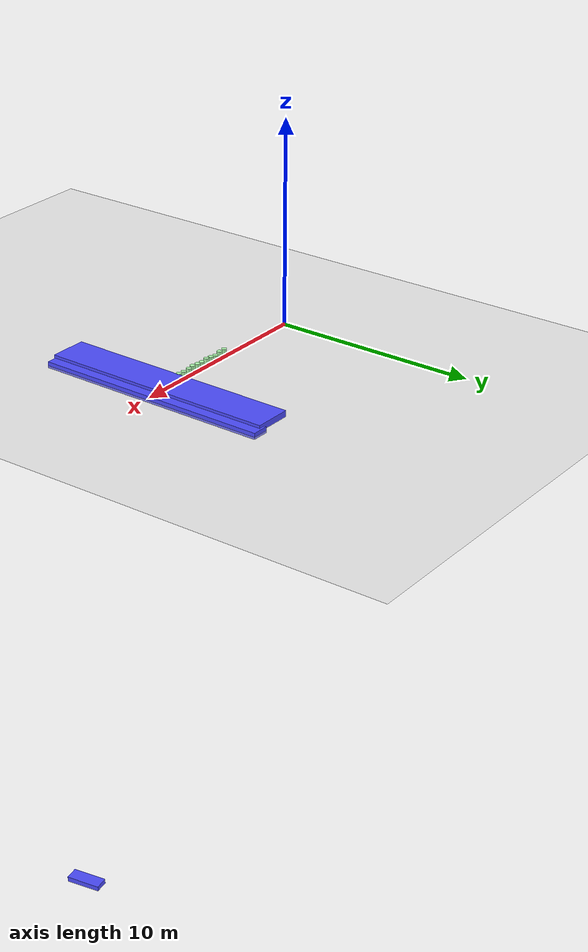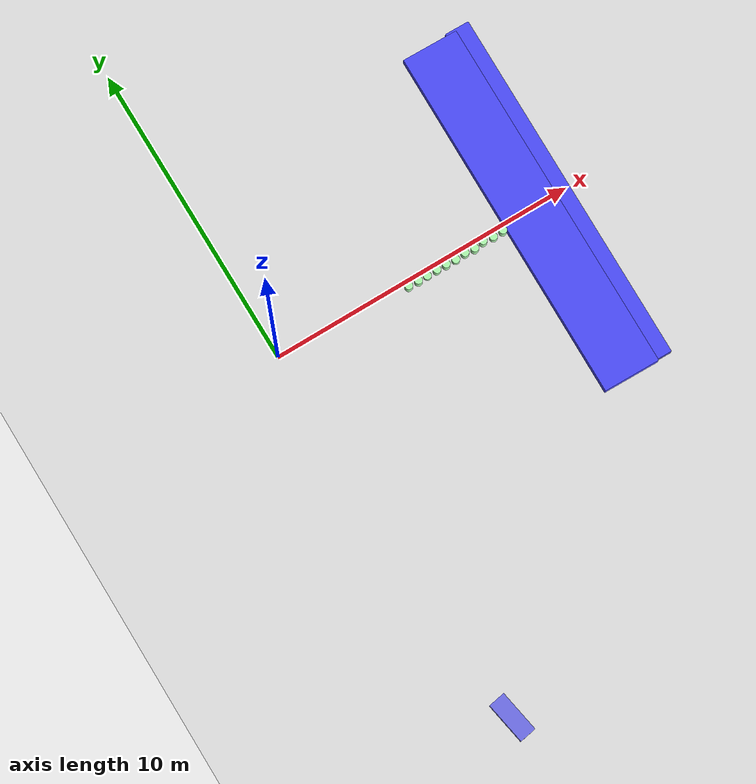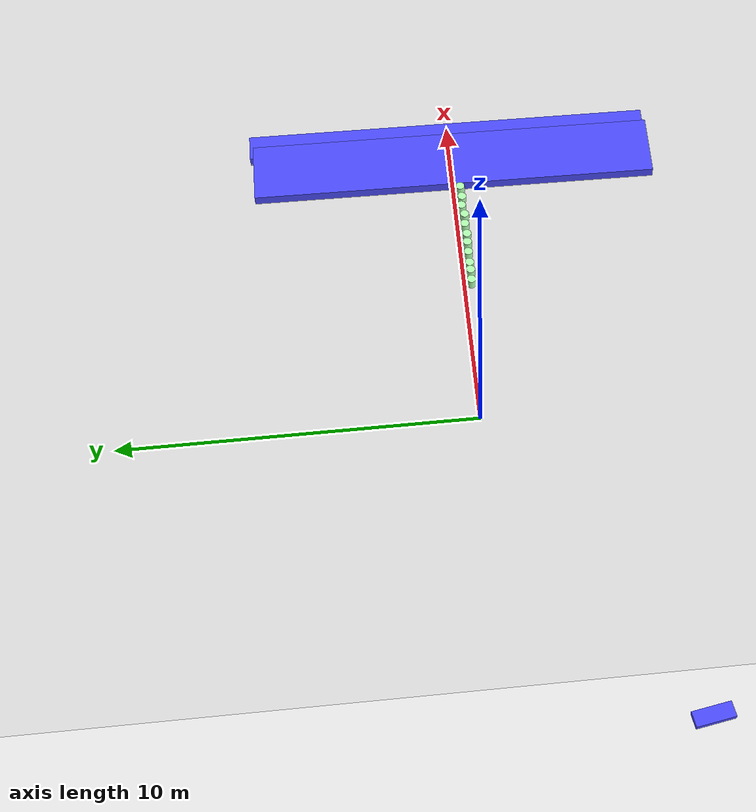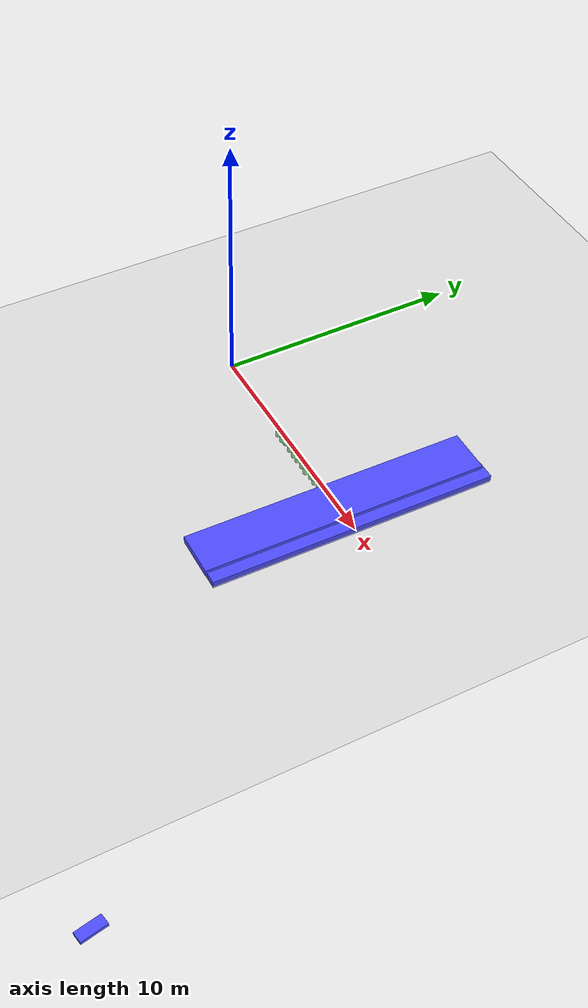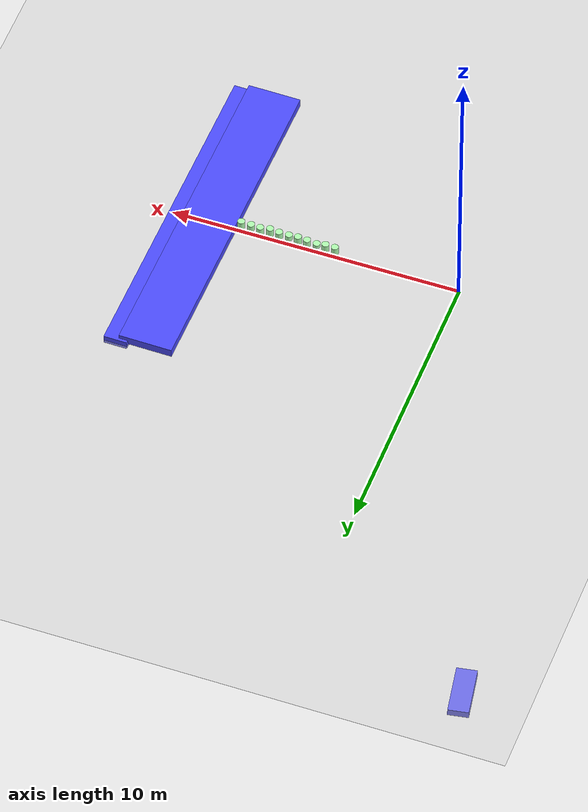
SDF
<sdf version="1.7">
 <world name="default">
  <model name="ground_plane">
   <static>1</static>
   <link name="link">
    <collision name="collision">
     <geometry><plane><normal>0 0 1</normal><size>100 100</size></plane></geometry>
     <surface><friction><ode><mu>100</mu><mu2>50</mu2></ode></friction></surface>
    </collision>
    <visual name="visual">
     <cast_shadows>0</cast_shadows>
     <geometry><plane><normal>0 0 1</normal><size>100 100</size></plane></geometry>
     <material>
      <script><uri>file://media/materials/scripts/gazebo.material</uri><name>Gazebo/Grey</name></script>
     </material>
    </visual>
   </link>
  </model>
  <model name="ban_200_80_30_clone_clone">
   <link name="link">
    <inertial>
     <mass>1</mass>
     <inertia>
      <ixx>0.166667</ixx>
      <ixy>0</ixy>
      <ixz>0</ixz>
      <iyy>0.166667</iyy>
      <iyz>0</iyz>
      <izz>0.166667</izz>
     </inertia>
    </inertial>
    <visual name="visual">
     <geometry><box><size>2 0.8 0.3</size></box></geometry>
     <material>
      <script><name>Gazebo/Grey</name><uri>file://media/materials/scripts/gazebo.material</uri></script>
      <shader type="pixel"><normal_map>__default__</normal_map></shader>
      <ambient>0.3 0.3 1 1</ambient>
      <diffuse>0.7 0.7 0.7 1</diffuse>
      <specular>0.01 0.01 0.01 1</specular>
      <emissive>0 0 0 1</emissive>
     </material>
    </visual>
    <collision name="collision">
     <geometry><box><size>2 0.8 0.3</size></box></geometry>
     <surface>
      <friction>
       <ode><mu>1</mu><mu2>1</mu2><fdir1>0 0 0</fdir1><slip1>0</slip1><slip2>0</slip2></ode>
       <torsional>
        <coefficient>1</coefficient>
        <patch_radius>0</patch_radius>
        <surface_radius>0</surface_radius>
        <use_patch_radius>1</use_patch_radius>
        <ode><slip>0</slip></ode>
       </torsional>
      </friction>
      <bounce><restitution_coefficient>0</restitution_coefficient><threshold>1e+06</threshold></bounce>
      <contact>
       <collide_without_contact>0</collide_without_contact>
       <collide_without_contact_bitmask>1</collide_without_contact_bitmask>
       <collide_bitmask>1</collide_bitmask>
       <ode>
        <soft_cfm>0</soft_cfm>
        <soft_erp>0.2</soft_erp>
        <kp>1e+13</kp>
        <kd>1</kd>
        <max_vel>0.01</max_vel>
        <min_depth>0</min_depth>
       </ode>
       <bullet>
        <split_impulse>1</split_impulse>
        <split_impulse_penetration_threshold>-0.01</split_impulse_penetration_threshold>
        <soft_cfm>0</soft_cfm>
        <soft_erp>0.2</soft_erp>
        <kp>1e+13</kp>
        <kd>1</kd>
       </bullet>
      </contact>
     </surface>
    </collision>
   </link>
   <static>1</static>
   <pose>3.32802 -11.2985 -36.3188 0 0 -1.39548</pose>
  </model>
  <model name="ban_400_80_30_clone">
   <link name="link">
    <inertial>
     <mass>1</mass>
     <inertia>
      <ixx>0.166667</ixx>
      <ixy>0</ixy>
      <ixz>0</ixz>
      <iyy>0.166667</iyy>
      <iyz>0</iyz>
      <izz>0.166667</izz>
     </inertia>
    </inertial>
    <visual name="visual">
     <geometry><box><size>11.7457 0.8 0.3</size></box></geometry>
     <material>
      <script><name>Gazebo/Grey</name><uri>file://media/materials/scripts/gazebo.material</uri></script>
      <shader type="pixel"><normal_map>__default__</normal_map></shader>
      <ambient>0.3 0.3 1 1</ambient>
      <diffuse>0.7 0.7 0.7 1</diffuse>
      <specular>0.01 0.01 0.01 1</specular>
      <emissive>0 0 0 1</emissive>
     </material>
    </visual>
    <collision name="collision">
     <geometry><box><size>11.7457 0.8 0.3</size></box></geometry>
     <surface>
      <friction>
       <ode><mu>1</mu><mu2>1</mu2><fdir1>0 0 0</fdir1><slip1>0</slip1><slip2>0</slip2></ode>
       <torsional>
        <coefficient>1</coefficient>
        <patch_radius>0</patch_radius>
        <surface_radius>0</surface_radius>
        <use_patch_radius>1</use_patch_radius>
        <ode><slip>0</slip></ode>
       </torsional>
      </friction>
      <bounce><restitution_coefficient>0</restitution_coefficient><threshold>1e+06</threshold></bounce>
      <contact>
       <collide_without_contact>0</collide_without_contact>
       <collide_without_contact_bitmask>1</collide_without_contact_bitmask>
       <collide_bitmask>1</collide_bitmask>
       <ode>
        <soft_cfm>0</soft_cfm>
        <soft_erp>0.2</soft_erp>
        <kp>1e+13</kp>
        <kd>1</kd>
        <max_vel>0.01</max_vel>
        <min_depth>0</min_depth>
       </ode>
       <bullet>
        <split_impulse>1</split_impulse>
        <split_impulse_penetration_threshold>-0.01</split_impulse_penetration_threshold>
        <soft_cfm>0</soft_cfm>
        <soft_erp>0.2</soft_erp>
        <kp>1e+13</kp>
        <kd>1</kd>
       </bullet>
      </contact>
     </surface>
    </collision>
   </link>
   <static>1</static>
   <pose>9.68721 0.016567 0 0 -0 1.55763</pose>
  </model>
  <model name="ban_400_80_30_clone_clone_clone">
   <link name="link">
    <inertial>
     <mass>1</mass>
     <inertia>
      <ixx>0.166667</ixx>
      <ixy>0</ixy>
      <ixz>0</ixz>
      <iyy>0.166667</iyy>
      <iyz>0</iyz>
      <izz>0.166667</izz>
     </inertia>
    </inertial>
    <visual name="visual">
     <geometry><box><size>11.703 1.83242 0.3</size></box></geometry>
     <material>
      <script><name>Gazebo/Grey</name><uri>file://media/materials/scripts/gazebo.material</uri></script>
      <shader type="pixel"><normal_map>__default__</normal_map></shader>
      <ambient>0.3 0.3 1 1</ambient>
      <diffuse>0.7 0.7 0.7 1</diffuse>
      <specular>0.01 0.01 0.01 1</specular>
      <emissive>0 0 0 1</emissive>
     </material>
    </visual>
    <collision name="collision">
     <geometry><box><size>11.703 1.83242 0.3</size></box></geometry>
     <surface>
      <friction>
       <ode><mu>1</mu><mu2>1</mu2><fdir1>0 0 0</fdir1><slip1>0</slip1><slip2>0</slip2></ode>
       <torsional>
        <coefficient>1</coefficient>
        <patch_radius>0</patch_radius>
        <surface_radius>0</surface_radius>
        <use_patch_radius>1</use_patch_radius>
        <ode><slip>0</slip></ode>
       </torsional>
      </friction>
      <bounce><restitution_coefficient>0</restitution_coefficient><threshold>1e+06</threshold></bounce>
      <contact>
       <collide_without_contact>0</collide_without_contact>
       <collide_without_contact_bitmask>1</collide_without_contact_bitmask>
       <collide_bitmask>1</collide_bitmask>
       <ode>
        <soft_cfm>0</soft_cfm>
        <soft_erp>0.2</soft_erp>
        <kp>1e+13</kp>
        <kd>1</kd>
        <max_vel>0.01</max_vel>
        <min_depth>0</min_depth>
       </ode>
       <bullet>
        <split_impulse>1</split_impulse>
        <split_impulse_penetration_threshold>-0.01</split_impulse_penetration_threshold>
        <soft_cfm>0</soft_cfm>
        <soft_erp>0.2</soft_erp>
        <kp>1e+13</kp>
        <kd>1</kd>
       </bullet>
      </contact>
     </surface>
    </collision>
   </link>
   <static>1</static>
   <pose>8.67792 -0.051809 0.139007 0 -0 1.55763</pose>
  </model>
  <model name="mhz_y_25_30_clone_13_clone_clone_9_clone_0">
   <link name="link">
    <inertial>
     <mass>1</mass>
     <inertia><ixx>0.145833</ixx><ixy>0</ixy><ixz>0</ixz><iyy>0.145833</iyy><iyz>0</iyz><izz>0.125</izz></inertia>
    </inertial>
    <visual name="visual">
     <geometry><cylinder><radius>0.125</radius><length>0.3</length></cylinder></geometry>
     <material>
      <script><name>Gazebo/Grey</name><uri>file://media/materials/scripts/gazebo.material</uri></script>
      <shader type="pixel"><normal_map>__default__</normal_map></shader>
      <ambient>0 1 0 0</ambient>
      <diffuse>0.7 1 0.7 1</diffuse>
      <specular>0.01 0.01 0.01 1</specular>
      <emissive>0 0 0 1</emissive>
     </material>
    </visual>
    <collision name="collision">
     <geometry><cylinder><radius>0.125</radius><length>0.3</length></cylinder></geometry>
     <surface>
      <friction>
       <ode><mu>1</mu><mu2>1</mu2><fdir1>0 0 0</fdir1><slip1>0</slip1><slip2>0</slip2></ode>
       <torsional>
        <coefficient>1</coefficient>
        <patch_radius>0</patch_radius>
        <surface_radius>0</surface_radius>
        <use_patch_radius>1</use_patch_radius>
        <ode><slip>0</slip></ode>
       </torsional>
      </friction>
      <bounce><restitution_coefficient>0</restitution_coefficient><threshold>1e+06</threshold></bounce>
      <contact>
       <collide_without_contact>0</collide_without_contact>
       <collide_without_contact_bitmask>1</collide_without_contact_bitmask>
       <collide_bitmask>1</collide_bitmask>
       <ode>
        <soft_cfm>0</soft_cfm>
        <soft_erp>0.2</soft_erp>
        <kp>1e+13</kp>
        <kd>1</kd>
        <max_vel>0.01</max_vel>
        <min_depth>0</min_depth>
       </ode>
       <bullet>
        <split_impulse>1</split_impulse>
        <split_impulse_penetration_threshold>-0.01</split_impulse_penetration_threshold>
        <soft_cfm>0</soft_cfm>
        <soft_erp>0.2</soft_erp>
        <kp>1e+13</kp>
        <kd>1</kd>
       </bullet>
      </contact>
     </surface>
    </collision>
   </link>
   <static>1</static>
   <pose>4.38543 -0.19628 0.14679 0 -0 0</pose>
  </model>
  <model name="mhz_y_25_30_clone_13_clone_clone_9_clone_1">
   <link name="link">
    <inertial>
     <mass>1</mass>
     <inertia><ixx>0.145833</ixx><ixy>0</ixy><ixz>0</ixz><iyy>0.145833</iyy><iyz>0</iyz><izz>0.125</izz></inertia>
    </inertial>
    <visual name="visual">
     <geometry><cylinder><radius>0.125</radius><length>0.3</length></cylinder></geometry>
     <material>
      <script><name>Gazebo/Grey</name><uri>file://media/materials/scripts/gazebo.material</uri></script>
      <shader type="pixel"><normal_map>__default__</normal_map></shader>
      <ambient>0 1 0 0</ambient>
      <diffuse>0.7 1 0.7 1</diffuse>
      <specular>0.01 0.01 0.01 1</specular>
      <emissive>0 0 0 1</emissive>
     </material>
    </visual>
    <collision name="collision">
     <geometry><cylinder><radius>0.125</radius><length>0.3</length></cylinder></geometry>
     <surface>
      <friction>
       <ode><mu>1</mu><mu2>1</mu2><fdir1>0 0 0</fdir1><slip1>0</slip1><slip2>0</slip2></ode>
       <torsional>
        <coefficient>1</coefficient>
        <patch_radius>0</patch_radius>
        <surface_radius>0</surface_radius>
        <use_patch_radius>1</use_patch_radius>
        <ode><slip>0</slip></ode>
       </torsional>
      </friction>
      <bounce><restitution_coefficient>0</restitution_coefficient><threshold>1e+06</threshold></bounce>
      <contact>
       <collide_without_contact>0</collide_without_contact>
       <collide_without_contact_bitmask>1</collide_without_contact_bitmask>
       <collide_bitmask>1</collide_bitmask>
       <ode>
        <soft_cfm>0</soft_cfm>
        <soft_erp>0.2</soft_erp>
        <kp>1e+13</kp>
        <kd>1</kd>
        <max_vel>0.01</max_vel>
        <min_depth>0</min_depth>
       </ode>
       <bullet>
        <split_impulse>1</split_impulse>
        <split_impulse_penetration_threshold>-0.01</split_impulse_penetration_threshold>
        <soft_cfm>0</soft_cfm>
        <soft_erp>0.2</soft_erp>
        <kp>1e+13</kp>
        <kd>1</kd>
       </bullet>
      </contact>
     </surface>
    </collision>
   </link>
   <static>1</static>
   <pose>4.71749 -0.205645 0.14679 0 -0 0</pose>
  </model>
  <model name="mhz_y_25_30_clone_13_clone_clone_9_clone_3">
   <link name="link">
    <inertial>
     <mass>1</mass>
     <inertia><ixx>0.145833</ixx><ixy>0</ixy><ixz>0</ixz><iyy>0.145833</iyy><iyz>0</iyz><izz>0.125</izz></inertia>
    </inertial>
    <visual name="visual">
     <geometry><cylinder><radius>0.125</radius><length>0.132572</length></cylinder></geometry>
     <material>
      <script><name>Gazebo/Grey</name><uri>file://media/materials/scripts/gazebo.material</uri></script>
      <shader type="pixel"><normal_map>__default__</normal_map></shader>
      <ambient>0 1 0 0</ambient>
      <diffuse>0.7 1 0.7 1</diffuse>
      <specular>0.01 0.01 0.01 1</specular>
      <emissive>0 0 0 1</emissive>
     </material>
    </visual>
    <collision name="collision">
     <geometry><cylinder><radius>0.125</radius><length>0.132572</length></cylinder></geometry>
     <surface>
      <friction>
       <ode><mu>1</mu><mu2>1</mu2><fdir1>0 0 0</fdir1><slip1>0</slip1><slip2>0</slip2></ode>
       <torsional>
        <coefficient>1</coefficient>
        <patch_radius>0</patch_radius>
        <surface_radius>0</surface_radius>
        <use_patch_radius>1</use_patch_radius>
        <ode><slip>0</slip></ode>
       </torsional>
      </friction>
      <bounce><restitution_coefficient>0</restitution_coefficient><threshold>1e+06</threshold></bounce>
      <contact>
       <collide_without_contact>0</collide_without_contact>
       <collide_without_contact_bitmask>1</collide_without_contact_bitmask>
       <collide_bitmask>1</collide_bitmask>
       <ode>
        <soft_cfm>0</soft_cfm>
        <soft_erp>0.2</soft_erp>
        <kp>1e+13</kp>
        <kd>1</kd>
        <max_vel>0.01</max_vel>
        <min_depth>0</min_depth>
       </ode>
       <bullet>
        <split_impulse>1</split_impulse>
        <split_impulse_penetration_threshold>-0.01</split_impulse_penetration_threshold>
        <soft_cfm>0</soft_cfm>
        <soft_erp>0.2</soft_erp>
        <kp>1e+13</kp>
        <kd>1</kd>
       </bullet>
      </contact>
     </surface>
    </collision>
   </link>
   <static>1</static>
   <pose>5.02456 -0.207351 0.14679 0 -0 0</pose>
  </model>
  <model name="mhz_y_25_30_clone_13_clone_clone_9_clone_5">
   <link name="link">
    <inertial>
     <mass>1</mass>
     <inertia><ixx>0.145833</ixx><ixy>0</ixy><ixz>0</ixz><iyy>0.145833</iyy><iyz>0</iyz><izz>0.125</izz></inertia>
    </inertial>
    <visual name="visual">
     <geometry><cylinder><radius>0.125</radius><length>0.243124</length></cylinder></geometry>
     <material>
      <script><name>Gazebo/Grey</name><uri>file://media/materials/scripts/gazebo.material</uri></script>
      <shader type="pixel"><normal_map>__default__</normal_map></shader>
      <ambient>0 1 0 0</ambient>
      <diffuse>0.7 1 0.7 1</diffuse>
      <specular>0.01 0.01 0.01 1</specular>
      <emissive>0 0 0 1</emissive>
     </material>
    </visual>
    <collision name="collision">
     <geometry><cylinder><radius>0.125</radius><length>0.243124</length></cylinder></geometry>
     <surface>
      <friction>
       <ode><mu>1</mu><mu2>1</mu2><fdir1>0 0 0</fdir1><slip1>0</slip1><slip2>0</slip2></ode>
       <torsional>
        <coefficient>1</coefficient>
        <patch_radius>0</patch_radius>
        <surface_radius>0</surface_radius>
        <use_patch_radius>1</use_patch_radius>
        <ode><slip>0</slip></ode>
       </torsional>
      </friction>
      <bounce><restitution_coefficient>0</restitution_coefficient><threshold>1e+06</threshold></bounce>
      <contact>
       <collide_without_contact>0</collide_without_contact>
       <collide_without_contact_bitmask>1</collide_without_contact_bitmask>
       <collide_bitmask>1</collide_bitmask>
       <ode>
        <soft_cfm>0</soft_cfm>
        <soft_erp>0.2</soft_erp>
        <kp>1e+13</kp>
        <kd>1</kd>
        <max_vel>0.01</max_vel>
        <min_depth>0</min_depth>
       </ode>
       <bullet>
        <split_impulse>1</split_impulse>
        <split_impulse_penetration_threshold>-0.01</split_impulse_penetration_threshold>
        <soft_cfm>0</soft_cfm>
        <soft_erp>0.2</soft_erp>
        <kp>1e+13</kp>
        <kd>1</kd>
       </bullet>
      </contact>
     </surface>
    </collision>
   </link>
   <static>1</static>
   <pose>5.35747 -0.201458 0.14679 0 -0 0</pose>
  </model>
  <model name="mhz_y_25_30_clone_13_clone_clone_9_clone_7">
   <link name="link">
    <inertial>
     <mass>1</mass>
     <inertia><ixx>0.145833</ixx><ixy>0</ixy><ixz>0</ixz><iyy>0.145833</iyy><iyz>0</iyz><izz>0.125</izz></inertia>
    </inertial>
    <visual name="visual">
     <geometry><cylinder><radius>0.125</radius><length>0.3</length></cylinder></geometry>
     <material>
      <script><name>Gazebo/Grey</name><uri>file://media/materials/scripts/gazebo.material</uri></script>
      <shader type="pixel"><normal_map>__default__</normal_map></shader>
      <ambient>0 1 0 0</ambient>
      <diffuse>0.7 1 0.7 1</diffuse>
      <specular>0.01 0.01 0.01 1</specular>
      <emissive>0 0 0 1</emissive>
     </material>
    </visual>
    <collision name="collision">
     <geometry><cylinder><radius>0.125</radius><length>0.3</length></cylinder></geometry>
     <surface>
      <friction>
       <ode><mu>1</mu><mu2>1</mu2><fdir1>0 0 0</fdir1><slip1>0</slip1><slip2>0</slip2></ode>
       <torsional>
        <coefficient>1</coefficient>
        <patch_radius>0</patch_radius>
        <surface_radius>0</surface_radius>
        <use_patch_radius>1</use_patch_radius>
        <ode><slip>0</slip></ode>
       </torsional>
      </friction>
      <bounce><restitution_coefficient>0</restitution_coefficient><threshold>1e+06</threshold></bounce>
      <contact>
       <collide_without_contact>0</collide_without_contact>
       <collide_without_contact_bitmask>1</collide_without_contact_bitmask>
       <collide_bitmask>1</collide_bitmask>
       <ode>
        <soft_cfm>0</soft_cfm>
        <soft_erp>0.2</soft_erp>
        <kp>1e+13</kp>
        <kd>1</kd>
        <max_vel>0.01</max_vel>
        <min_depth>0</min_depth>
       </ode>
       <bullet>
        <split_impulse>1</split_impulse>
        <split_impulse_penetration_threshold>-0.01</split_impulse_penetration_threshold>
        <soft_cfm>0</soft_cfm>
        <soft_erp>0.2</soft_erp>
        <kp>1e+13</kp>
        <kd>1</kd>
       </bullet>
      </contact>
     </surface>
    </collision>
   </link>
   <static>1</static>
   <pose>5.67725 -0.205084 0.14679 0 -0 0</pose>
  </model>
  <model name="mhz_y_25_30_clone_13_clone_clone_9_clone_9">
   <link name="link">
    <inertial>
     <mass>1</mass>
     <inertia><ixx>0.145833</ixx><ixy>0</ixy><ixz>0</ixz><iyy>0.145833</iyy><iyz>0</iyz><izz>0.125</izz></inertia>
    </inertial>
    <visual name="visual">
     <geometry><cylinder><radius>0.125</radius><length>0.191489</length></cylinder></geometry>
     <material>
      <script><name>Gazebo/Grey</name><uri>file://media/materials/scripts/gazebo.material</uri></script>
      <shader type="pixel"><normal_map>__default__</normal_map></shader>
      <ambient>0 1 0 0</ambient>
      <diffuse>0.7 1 0.7 1</diffuse>
      <specular>0.01 0.01 0.01 1</specular>
      <emissive>0 0 0 1</emissive>
     </material>
    </visual>
    <collision name="collision">
     <geometry><cylinder><radius>0.125</radius><length>0.191489</length></cylinder></geometry>
     <surface>
      <friction>
       <ode><mu>1</mu><mu2>1</mu2><fdir1>0 0 0</fdir1><slip1>0</slip1><slip2>0</slip2></ode>
       <torsional>
        <coefficient>1</coefficient>
        <patch_radius>0</patch_radius>
        <surface_radius>0</surface_radius>
        <use_patch_radius>1</use_patch_radius>
        <ode><slip>0</slip></ode>
       </torsional>
      </friction>
      <bounce><restitution_coefficient>0</restitution_coefficient><threshold>1e+06</threshold></bounce>
      <contact>
       <collide_without_contact>0</collide_without_contact>
       <collide_without_contact_bitmask>1</collide_without_contact_bitmask>
       <collide_bitmask>1</collide_bitmask>
       <ode>
        <soft_cfm>0</soft_cfm>
        <soft_erp>0.2</soft_erp>
        <kp>1e+13</kp>
        <kd>1</kd>
        <max_vel>0.01</max_vel>
        <min_depth>0</min_depth>
       </ode>
       <bullet>
        <split_impulse>1</split_impulse>
        <split_impulse_penetration_threshold>-0.01</split_impulse_penetration_threshold>
        <soft_cfm>0</soft_cfm>
        <soft_erp>0.2</soft_erp>
        <kp>1e+13</kp>
        <kd>1</kd>
       </bullet>
      </contact>
     </surface>
    </collision>
   </link>
   <static>1</static>
   <pose>6.00131 -0.224235 0.14679 0 -0 0</pose>
  </model>
  <model name="mhz_y_25_30_clone_13_clone_clone_9_clone_9_clone">
   <link name="link">
    <inertial>
     <mass>1</mass>
     <inertia><ixx>0.145833</ixx><ixy>0</ixy><ixz>0</ixz><iyy>0.145833</iyy><iyz>0</iyz><izz>0.125</izz></inertia>
    </inertial>
    <visual name="visual">
     <geometry><cylinder><radius>0.125</radius><length>0.263961</length></cylinder></geometry>
     <material>
      <script><name>Gazebo/Grey</name><uri>file://media/materials/scripts/gazebo.material</uri></script>
      <shader type="pixel"><normal_map>__default__</normal_map></shader>
      <ambient>0 1 0 0</ambient>
      <diffuse>0.7 1 0.7 1</diffuse>
      <specular>0.01 0.01 0.01 1</specular>
      <emissive>0 0 0 1</emissive>
     </material>
    </visual>
    <collision name="collision">
     <geometry><cylinder><radius>0.125</radius><length>0.263961</length></cylinder></geometry>
     <surface>
      <friction>
       <ode><mu>1</mu><mu2>1</mu2><fdir1>0 0 0</fdir1><slip1>0</slip1><slip2>0</slip2></ode>
       <torsional>
        <coefficient>1</coefficient>
        <patch_radius>0</patch_radius>
        <surface_radius>0</surface_radius>
        <use_patch_radius>1</use_patch_radius>
        <ode><slip>0</slip></ode>
       </torsional>
      </friction>
      <bounce><restitution_coefficient>0</restitution_coefficient><threshold>1e+06</threshold></bounce>
      <contact>
       <collide_without_contact>0</collide_without_contact>
       <collide_without_contact_bitmask>1</collide_without_contact_bitmask>
       <collide_bitmask>1</collide_bitmask>
       <ode>
        <soft_cfm>0</soft_cfm>
        <soft_erp>0.2</soft_erp>
        <kp>1e+13</kp>
        <kd>1</kd>
        <max_vel>0.01</max_vel>
        <min_depth>0</min_depth>
       </ode>
       <bullet>
        <split_impulse>1</split_impulse>
        <split_impulse_penetration_threshold>-0.01</split_impulse_penetration_threshold>
        <soft_cfm>0</soft_cfm>
        <soft_erp>0.2</soft_erp>
        <kp>1e+13</kp>
        <kd>1</kd>
       </bullet>
      </contact>
     </surface>
    </collision>
   </link>
   <static>1</static>
   <pose>6.33421 -0.196664 0.14679 0 -0 0</pose>
  </model>
  <model name="mhz_y_25_30_clone_13_clone_clone_9_clone_9_clone_1">
   <link name="link">
    <inertial>
     <mass>1</mass>
     <inertia><ixx>0.145833</ixx><ixy>0</ixy><ixz>0</ixz><iyy>0.145833</iyy><iyz>0</iyz><izz>0.125</izz></inertia>
    </inertial>
    <visual name="visual">
     <geometry><cylinder><radius>0.125</radius><length>0.3</length></cylinder></geometry>
     <material>
      <script><name>Gazebo/Grey</name><uri>file://media/materials/scripts/gazebo.material</uri></script>
      <shader type="pixel"><normal_map>__default__</normal_map></shader>
      <ambient>0 1 0 0</ambient>
      <diffuse>0.7 1 0.7 1</diffuse>
      <specular>0.01 0.01 0.01 1</specular>
      <emissive>0 0 0 1</emissive>
     </material>
    </visual>
    <collision name="collision">
     <geometry><cylinder><radius>0.125</radius><length>0.3</length></cylinder></geometry>
     <surface>
      <friction>
       <ode><mu>1</mu><mu2>1</mu2><fdir1>0 0 0</fdir1><slip1>0</slip1><slip2>0</slip2></ode>
       <torsional>
        <coefficient>1</coefficient>
        <patch_radius>0</patch_radius>
        <surface_radius>0</surface_radius>
        <use_patch_radius>1</use_patch_radius>
        <ode><slip>0</slip></ode>
       </torsional>
      </friction>
      <bounce><restitution_coefficient>0</restitution_coefficient><threshold>1e+06</threshold></bounce>
      <contact>
       <collide_without_contact>0</collide_without_contact>
       <collide_without_contact_bitmask>1</collide_without_contact_bitmask>
       <collide_bitmask>1</collide_bitmask>
       <ode>
        <soft_cfm>0</soft_cfm>
        <soft_erp>0.2</soft_erp>
        <kp>1e+13</kp>
        <kd>1</kd>
        <max_vel>0.01</max_vel>
        <min_depth>0</min_depth>
       </ode>
       <bullet>
        <split_impulse>1</split_impulse>
        <split_impulse_penetration_threshold>-0.01</split_impulse_penetration_threshold>
        <soft_cfm>0</soft_cfm>
        <soft_erp>0.2</soft_erp>
        <kp>1e+13</kp>
        <kd>1</kd>
       </bullet>
      </contact>
     </surface>
    </collision>
   </link>
   <static>1</static>
   <pose>6.65657 -0.225918 0.14679 0 -0 0</pose>
  </model>
  <model name="mhz_y_25_30_clone_13_clone_clone_9_clone_9_clone_3">
   <link name="link">
    <inertial>
     <mass>1</mass>
     <inertia><ixx>0.145833</ixx><ixy>0</ixy><ixz>0</ixz><iyy>0.145833</iyy><iyz>0</iyz><izz>0.125</izz></inertia>
    </inertial>
    <visual name="visual">
     <geometry><cylinder><radius>0.125</radius><length>0.3</length></cylinder></geometry>
     <material>
      <script><name>Gazebo/Grey</name><uri>file://media/materials/scripts/gazebo.material</uri></script>
      <shader type="pixel"><normal_map>__default__</normal_map></shader>
      <ambient>0 1 0 0</ambient>
      <diffuse>0.7 1 0.7 1</diffuse>
      <specular>0.01 0.01 0.01 1</specular>
      <emissive>0 0 0 1</emissive>
     </material>
    </visual>
    <collision name="collision">
     <geometry><cylinder><radius>0.125</radius><length>0.3</length></cylinder></geometry>
     <surface>
      <friction>
       <ode><mu>1</mu><mu2>1</mu2><fdir1>0 0 0</fdir1><slip1>0</slip1><slip2>0</slip2></ode>
       <torsional>
        <coefficient>1</coefficient>
        <patch_radius>0</patch_radius>
        <surface_radius>0</surface_radius>
        <use_patch_radius>1</use_patch_radius>
        <ode><slip>0</slip></ode>
       </torsional>
      </friction>
      <bounce><restitution_coefficient>0</restitution_coefficient><threshold>1e+06</threshold></bounce>
      <contact>
       <collide_without_contact>0</collide_without_contact>
       <collide_without_contact_bitmask>1</collide_without_contact_bitmask>
       <collide_bitmask>1</collide_bitmask>
       <ode>
        <soft_cfm>0</soft_cfm>
        <soft_erp>0.2</soft_erp>
        <kp>1e+13</kp>
        <kd>1</kd>
        <max_vel>0.01</max_vel>
        <min_depth>0</min_depth>
       </ode>
       <bullet>
        <split_impulse>1</split_impulse>
        <split_impulse_penetration_threshold>-0.01</split_impulse_penetration_threshold>
        <soft_cfm>0</soft_cfm>
        <soft_erp>0.2</soft_erp>
        <kp>1e+13</kp>
        <kd>1</kd>
       </bullet>
      </contact>
     </surface>
    </collision>
   </link>
   <static>1</static>
   <pose>6.98232 -0.164823 0.14679 0 -0 0</pose>
  </model>
  <model name="mhz_y_25_30_clone_13_clone_clone_9_clone_9_clone_5">
   <link name="link">
    <inertial>
     <mass>1</mass>
     <inertia><ixx>0.145833</ixx><ixy>0</ixy><ixz>0</ixz><iyy>0.145833</iyy><iyz>0</iyz><izz>0.125</izz></inertia>
    </inertial>
    <visual name="visual">
     <geometry><cylinder><radius>0.125</radius><length>0.231568</length></cylinder></geometry>
     <material>
      <script><name>Gazebo/Grey</name><uri>file://media/materials/scripts/gazebo.material</uri></script>
      <shader type="pixel"><normal_map>__default__</normal_map></shader>
      <ambient>0 1 0 0</ambient>
      <diffuse>0.7 1 0.7 1</diffuse>
      <specular>0.01 0.01 0.01 1</specular>
      <emissive>0 0 0 1</emissive>
     </material>
    </visual>
    <collision name="collision">
     <geometry><cylinder><radius>0.125</radius><length>0.231568</length></cylinder></geometry>
     <surface>
      <friction>
       <ode><mu>1</mu><mu2>1</mu2><fdir1>0 0 0</fdir1><slip1>0</slip1><slip2>0</slip2></ode>
       <torsional>
        <coefficient>1</coefficient>
        <patch_radius>0</patch_radius>
        <surface_radius>0</surface_radius>
        <use_patch_radius>1</use_patch_radius>
        <ode><slip>0</slip></ode>
       </torsional>
      </friction>
      <bounce><restitution_coefficient>0</restitution_coefficient><threshold>1e+06</threshold></bounce>
      <contact>
       <collide_without_contact>0</collide_without_contact>
       <collide_without_contact_bitmask>1</collide_without_contact_bitmask>
       <collide_bitmask>1</collide_bitmask>
       <ode>
        <soft_cfm>0</soft_cfm>
        <soft_erp>0.2</soft_erp>
        <kp>1e+13</kp>
        <kd>1</kd>
        <max_vel>0.01</max_vel>
        <min_depth>0</min_depth>
       </ode>
       <bullet>
        <split_impulse>1</split_impulse>
        <split_impulse_penetration_threshold>-0.01</split_impulse_penetration_threshold>
        <soft_cfm>0</soft_cfm>
        <soft_erp>0.2</soft_erp>
        <kp>1e+13</kp>
        <kd>1</kd>
       </bullet>
      </contact>
     </surface>
    </collision>
   </link>
   <static>1</static>
   <pose>7.31681 -0.207449 0.14679 0 -0 0</pose>
  </model>
  <model name="mhz_y_25_30_clone_13_clone_clone_9_clone_9_clone_7">
   <link name="link">
    <inertial>
     <mass>1</mass>
     <inertia><ixx>0.145833</ixx><ixy>0</ixy><ixz>0</ixz><iyy>0.145833</iyy><iyz>0</iyz><izz>0.125</izz></inertia>
    </inertial>
    <visual name="visual">
     <geometry><cylinder><radius>0.125</radius><length>0.3</length></cylinder></geometry>
     <material>
      <script><name>Gazebo/Grey</name><uri>file://media/materials/scripts/gazebo.material</uri></script>
      <shader type="pixel"><normal_map>__default__</normal_map></shader>
      <ambient>0 1 0 0</ambient>
      <diffuse>0.7 1 0.7 1</diffuse>
      <specular>0.01 0.01 0.01 1</specular>
      <emissive>0 0 0 1</emissive>
     </material>
    </visual>
    <collision name="collision">
     <geometry><cylinder><radius>0.125</radius><length>0.3</length></cylinder></geometry>
     <surface>
      <friction>
       <ode><mu>1</mu><mu2>1</mu2><fdir1>0 0 0</fdir1><slip1>0</slip1><slip2>0</slip2></ode>
       <torsional>
        <coefficient>1</coefficient>
        <patch_radius>0</patch_radius>
        <surface_radius>0</surface_radius>
        <use_patch_radius>1</use_patch_radius>
        <ode><slip>0</slip></ode>
       </torsional>
      </friction>
      <bounce><restitution_coefficient>0</restitution_coefficient><threshold>1e+06</threshold></bounce>
      <contact>
       <collide_without_contact>0</collide_without_contact>
       <collide_without_contact_bitmask>1</collide_without_contact_bitmask>
       <collide_bitmask>1</collide_bitmask>
       <ode>
        <soft_cfm>0</soft_cfm>
        <soft_erp>0.2</soft_erp>
        <kp>1e+13</kp>
        <kd>1</kd>
        <max_vel>0.01</max_vel>
        <min_depth>0</min_depth>
       </ode>
       <bullet>
        <split_impulse>1</split_impulse>
        <split_impulse_penetration_threshold>-0.01</split_impulse_penetration_threshold>
        <soft_cfm>0</soft_cfm>
        <soft_erp>0.2</soft_erp>
        <kp>1e+13</kp>
        <kd>1</kd>
       </bullet>
      </contact>
     </surface>
    </collision>
   </link>
   <static>1</static>
   <pose>7.65686 -0.191708 0.14679 0 -0 0</pose>
  </model>
 </world>
</sdf>
